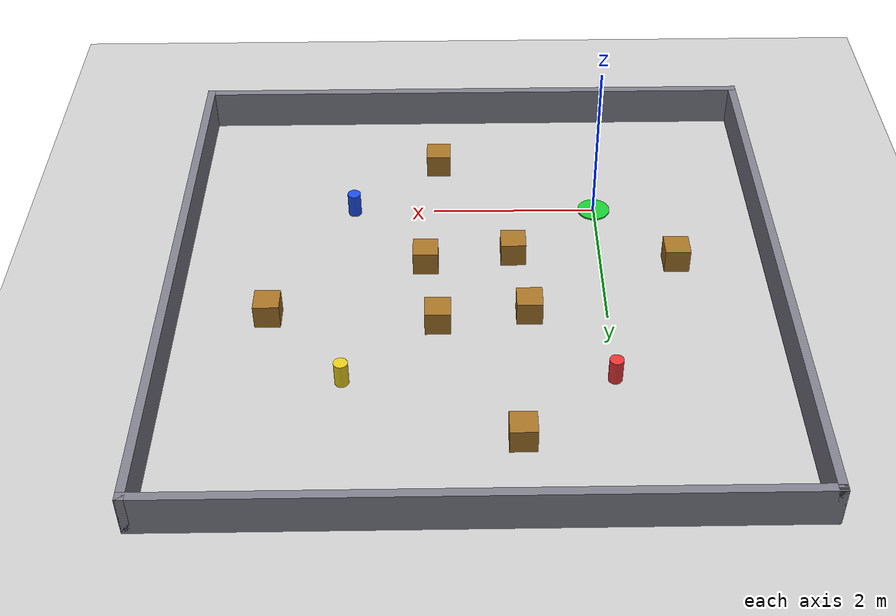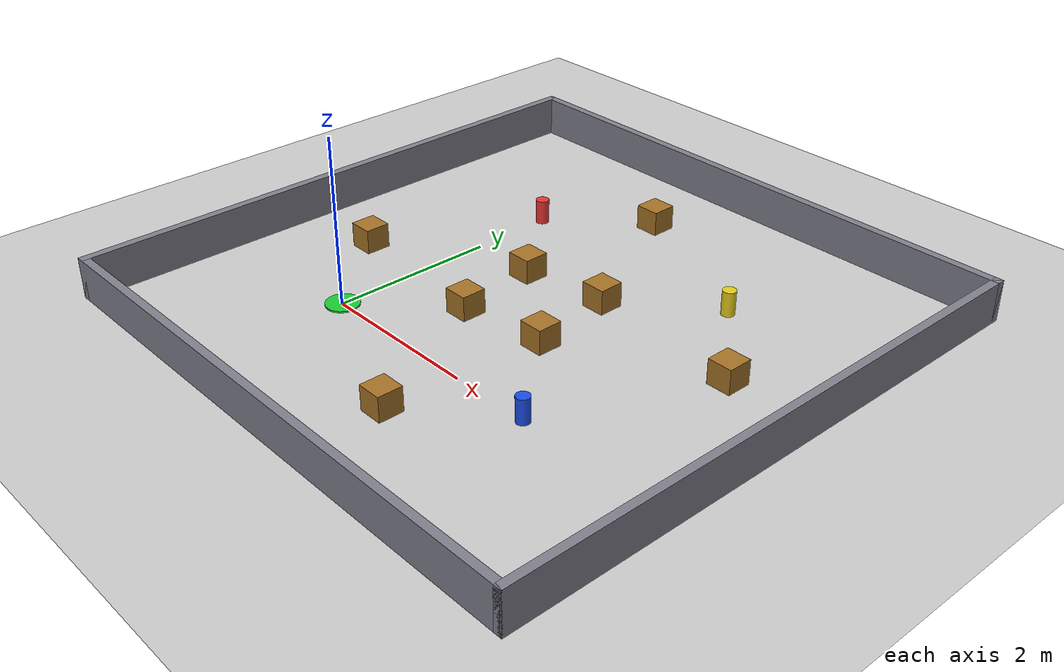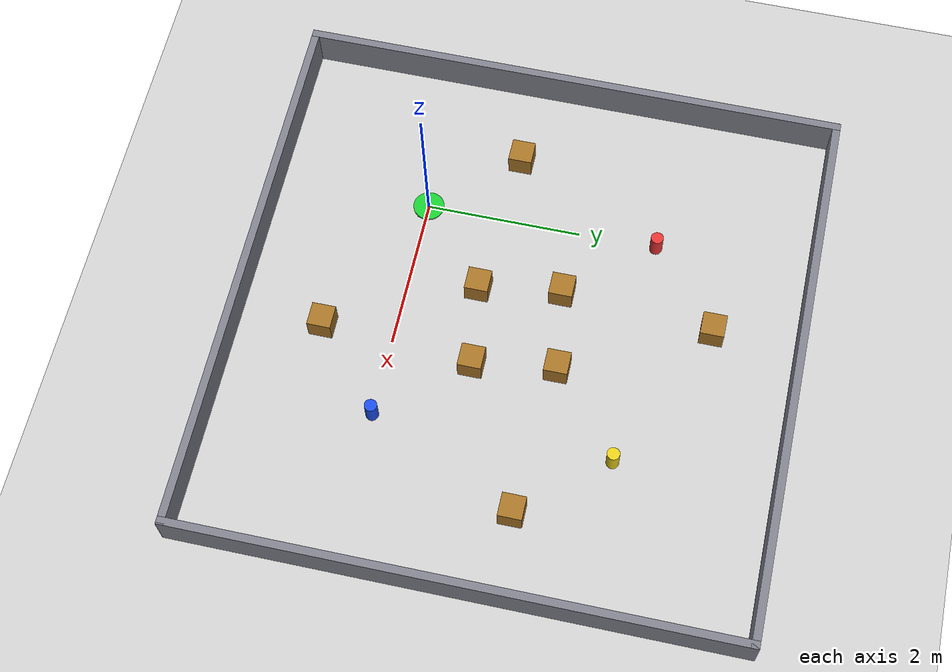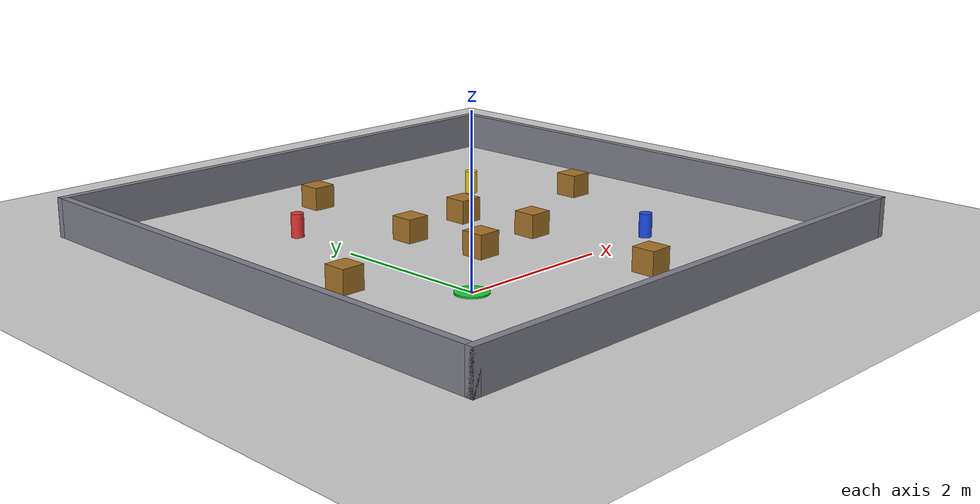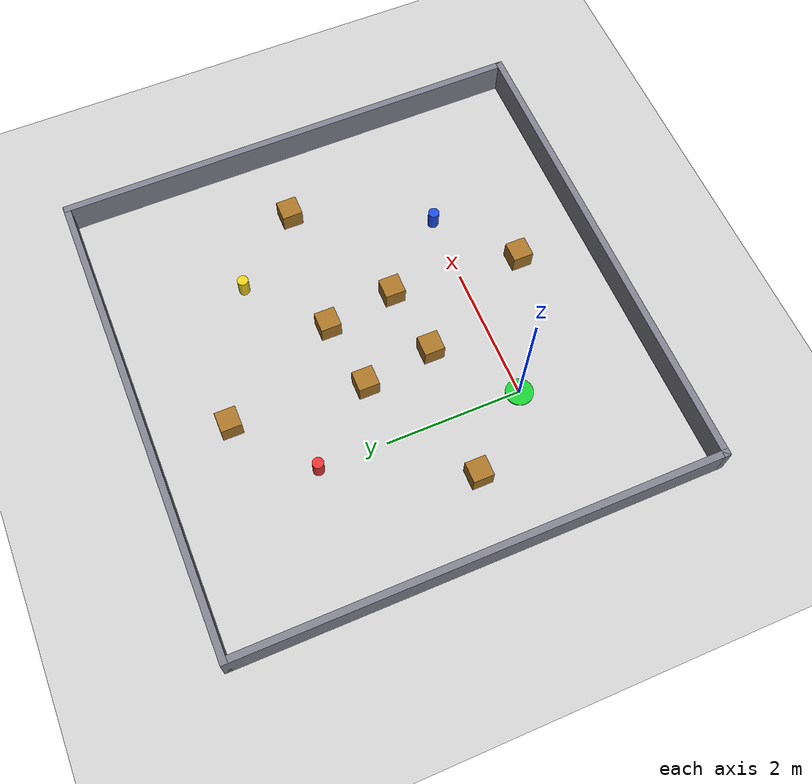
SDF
<?xml version="1.0" ?>
<sdf version="1.6">
  <world name="warehouse_inspection">
    <include>
      <uri>model://sun</uri>
    </include>
    <include>
      <uri>model://ground_plane</uri>
    </include>

    <physics type="ode">
      <real_time_update_rate>1000.0</real_time_update_rate>
      <max_step_size>0.001</max_step_size>
      <real_time_factor>1</real_time_factor>
    </physics>

    <scene>
      <ambient>0.6 0.6 0.6 1</ambient>
      <background>0.7 0.8 0.9 1</background>
      <shadows>true</shadows>
    </scene>

    <!-- ================= Warehouse bay walls ================= -->
    <model name="wall_north">
      <static>true</static>
      <pose>1.5 5.0 0.25 0 0 0</pose>
      <link name="link">
        <collision name="collision">
          <geometry><box><size>7.1 0.1 0.5</size></box></geometry>
        </collision>
        <visual name="visual">
          <geometry><box><size>7.1 0.1 0.5</size></box></geometry>
          <material><ambient>0.5 0.5 0.55 1</ambient><diffuse>0.5 0.5 0.55 1</diffuse></material>
        </visual>
      </link>
    </model>

    <model name="wall_south">
      <static>true</static>
      <pose>1.5 -2.0 0.25 0 0 0</pose>
      <link name="link">
        <collision name="collision">
          <geometry><box><size>7.1 0.1 0.5</size></box></geometry>
        </collision>
        <visual name="visual">
          <geometry><box><size>7.1 0.1 0.5</size></box></geometry>
          <material><ambient>0.5 0.5 0.55 1</ambient><diffuse>0.5 0.5 0.55 1</diffuse></material>
        </visual>
      </link>
    </model>

    <model name="wall_east">
      <static>true</static>
      <pose>5.0 1.5 0.25 0 0 0</pose>
      <link name="link">
        <collision name="collision">
          <geometry><box><size>0.1 7.1 0.5</size></box></geometry>
        </collision>
        <visual name="visual">
          <geometry><box><size>0.1 7.1 0.5</size></box></geometry>
          <material><ambient>0.5 0.5 0.55 1</ambient><diffuse>0.5 0.5 0.55 1</diffuse></material>
        </visual>
      </link>
    </model>

    <model name="wall_west">
      <static>true</static>
      <pose>-2.0 1.5 0.25 0 0 0</pose>
      <link name="link">
        <collision name="collision">
          <geometry><box><size>0.1 7.1 0.5</size></box></geometry>
        </collision>
        <visual name="visual">
          <geometry><box><size>0.1 7.1 0.5</size></box></geometry>
          <material><ambient>0.5 0.5 0.55 1</ambient><diffuse>0.5 0.5 0.55 1</diffuse></material>
        </visual>
      </link>
    </model>

    <model name="pallet_obstacle_1">
      <static>true</static>
      <pose>1.05 0.90 0.15 0 0 0</pose>
      <link name="link">
        <collision name="collision">
          <geometry><box><size>0.3 0.3 0.3</size></box></geometry>
        </collision>
        <visual name="visual">
          <geometry><box><size>0.3 0.3 0.3</size></box></geometry>
          <material><ambient>0.65 0.45 0.15 1</ambient><diffuse>0.65 0.45 0.15 1</diffuse></material>
        </visual>
      </link>
    </model>

    <model name="pallet_obstacle_2">
      <static>true</static>
      <pose>1.95 -0.90 0.15 0 0 0</pose>
      <link name="link">
        <collision name="collision">
          <geometry><box><size>0.3 0.3 0.3</size></box></geometry>
        </collision>
        <visual name="visual">
          <geometry><box><size>0.3 0.3 0.3</size></box></geometry>
          <material><ambient>0.65 0.45 0.15 1</ambient><diffuse>0.65 0.45 0.15 1</diffuse></material>
        </visual>
      </link>
    </model>

    <model name="pallet_obstacle_3">
      <static>true</static>
      <pose>2.10 1.05 0.15 0 0 0</pose>
      <link name="link">
        <collision name="collision">
          <geometry><box><size>0.3 0.3 0.3</size></box></geometry>
        </collision>
        <visual name="visual">
          <geometry><box><size>0.3 0.3 0.3</size></box></geometry>
          <material><ambient>0.65 0.45 0.15 1</ambient><diffuse>0.65 0.45 0.15 1</diffuse></material>
        </visual>
      </link>
    </model>

    <model name="pallet_obstacle_4">
      <static>true</static>
      <pose>3.90 1.95 0.15 0 0 0</pose>
      <link name="link">
        <collision name="collision">
          <geometry><box><size>0.3 0.3 0.3</size></box></geometry>
        </collision>
        <visual name="visual">
          <geometry><box><size>0.3 0.3 0.3</size></box></geometry>
          <material><ambient>0.65 0.45 0.15 1</ambient><diffuse>0.65 0.45 0.15 1</diffuse></material>
        </visual>
      </link>
    </model>

    <model name="pallet_obstacle_5">
      <static>true</static>
      <pose>1.95 2.10 0.15 0 0 0</pose>
      <link name="link">
        <collision name="collision">
          <geometry><box><size>0.3 0.3 0.3</size></box></geometry>
        </collision>
        <visual name="visual">
          <geometry><box><size>0.3 0.3 0.3</size></box></geometry>
          <material><ambient>0.65 0.45 0.15 1</ambient><diffuse>0.65 0.45 0.15 1</diffuse></material>
        </visual>
      </link>
    </model>

    <model name="pallet_obstacle_6">
      <static>true</static>
      <pose>1.05 3.90 0.15 0 0 0</pose>
      <link name="link">
        <collision name="collision">
          <geometry><box><size>0.3 0.3 0.3</size></box></geometry>
        </collision>
        <visual name="visual">
          <geometry><box><size>0.3 0.3 0.3</size></box></geometry>
          <material><ambient>0.65 0.45 0.15 1</ambient><diffuse>0.65 0.45 0.15 1</diffuse></material>
        </visual>
      </link>
    </model>

    <model name="pallet_obstacle_7">
      <static>true</static>
      <pose>0.90 1.95 0.15 0 0 0</pose>
      <link name="link">
        <collision name="collision">
          <geometry><box><size>0.3 0.3 0.3</size></box></geometry>
        </collision>
        <visual name="visual">
          <geometry><box><size>0.3 0.3 0.3</size></box></geometry>
          <material><ambient>0.65 0.45 0.15 1</ambient><diffuse>0.65 0.45 0.15 1</diffuse></material>
        </visual>
      </link>
    </model>

    <model name="pallet_obstacle_8">
      <static>true</static>
      <pose>-0.90 1.05 0.15 0 0 0</pose>
      <link name="link">
        <collision name="collision">
          <geometry><box><size>0.3 0.3 0.3</size></box></geometry>
        </collision>
        <visual name="visual">
          <geometry><box><size>0.3 0.3 0.3</size></box></geometry>
          <material><ambient>0.65 0.45 0.15 1</ambient><diffuse>0.65 0.45 0.15 1</diffuse></material>
        </visual>
      </link>
    </model>

    <!-- ================= Inspection checkpoint markers (visual-only, no collision) ================= -->
    <model name="checkpoint_marker_1">
      <static>true</static>
      <pose>3.0 0.0 0.15 0 0 0</pose>
      <link name="link">
        <visual name="visual">
          <geometry><cylinder><radius>0.08</radius><length>0.3</length></cylinder></geometry>
          <material><ambient>0.1 0.3 0.9 1</ambient><diffuse>0.1 0.3 0.9 1</diffuse></material>
        </visual>
      </link>
    </model>

    <model name="checkpoint_marker_2">
      <static>true</static>
      <pose>3.0 3.0 0.15 0 0 0</pose>
      <link name="link">
        <visual name="visual">
          <geometry><cylinder><radius>0.08</radius><length>0.3</length></cylinder></geometry>
          <material><ambient>0.9 0.8 0.1 1</ambient><diffuse>0.9 0.8 0.1 1</diffuse></material>
        </visual>
      </link>
    </model>

    <model name="checkpoint_marker_3">
      <static>true</static>
      <pose>0.0 3.0 0.15 0 0 0</pose>
      <link name="link">
        <visual name="visual">
          <geometry><cylinder><radius>0.08</radius><length>0.3</length></cylinder></geometry>
          <material><ambient>0.9 0.2 0.2 1</ambient><diffuse>0.9 0.2 0.2 1</diffuse></material>
        </visual>
      </link>
    </model>

    <!-- Checkpoint 0 doubles as the charging dock: robot starts and mission completes here -->
    <model name="charging_dock_marker">
      <static>true</static>
      <pose>0.0 0.0 0.01 0 0 0</pose>
      <link name="link">
        <visual name="visual">
          <geometry><cylinder><radius>0.2</radius><length>0.02</length></cylinder></geometry>
          <material><ambient>0.1 0.8 0.2 1</ambient><diffuse>0.1 0.8 0.2 1</diffuse></material>
        </visual>
      </link>
    </model>
  </world>
</sdf>
